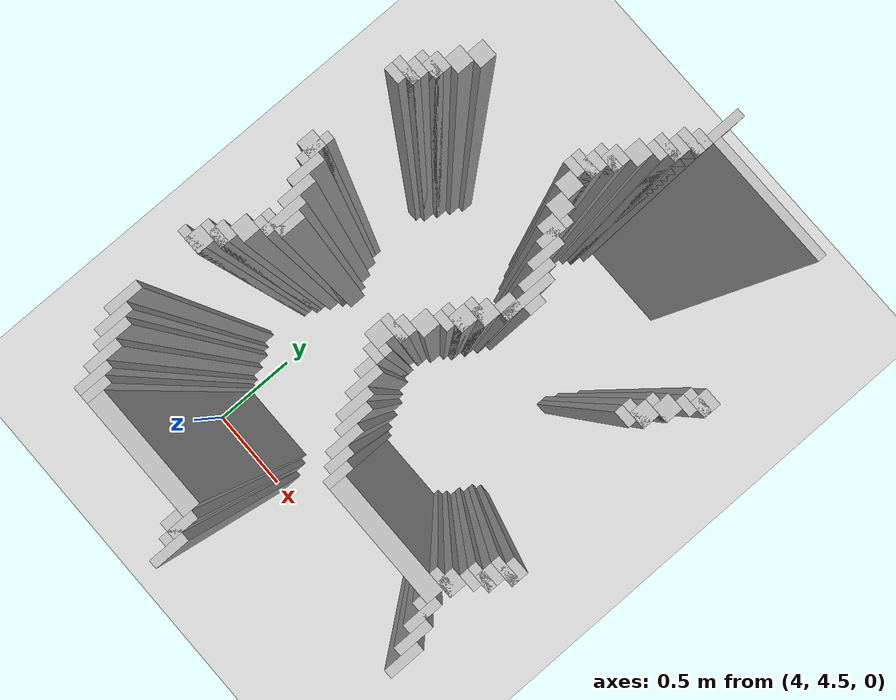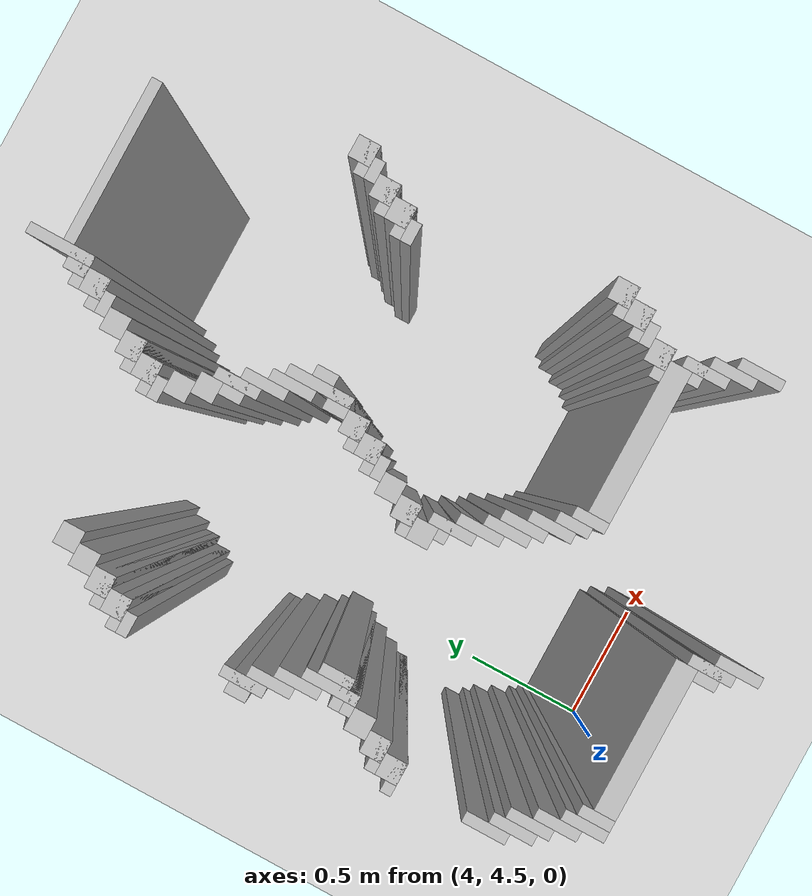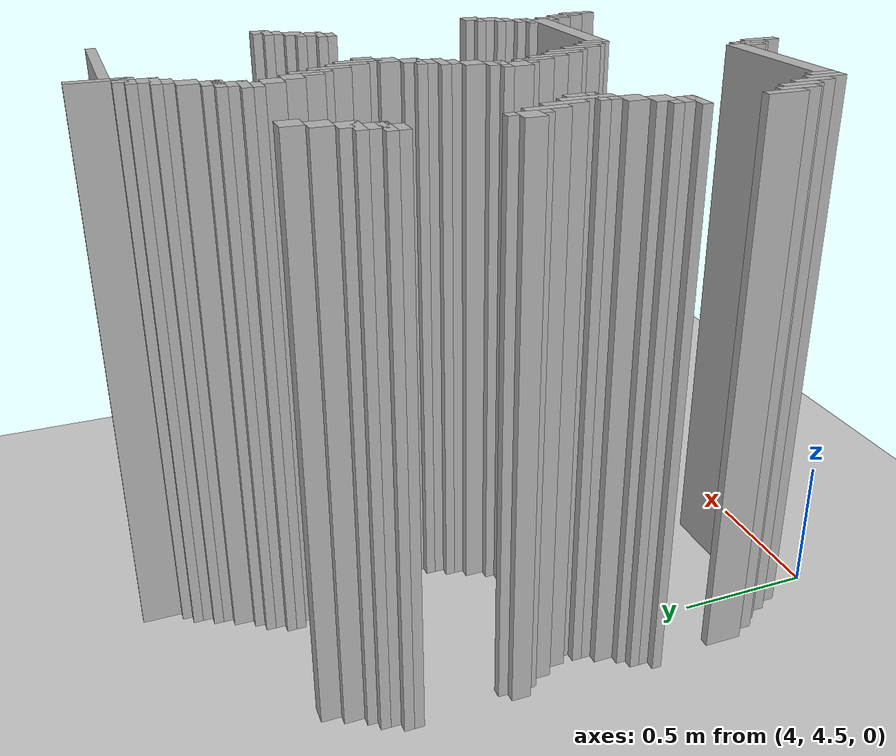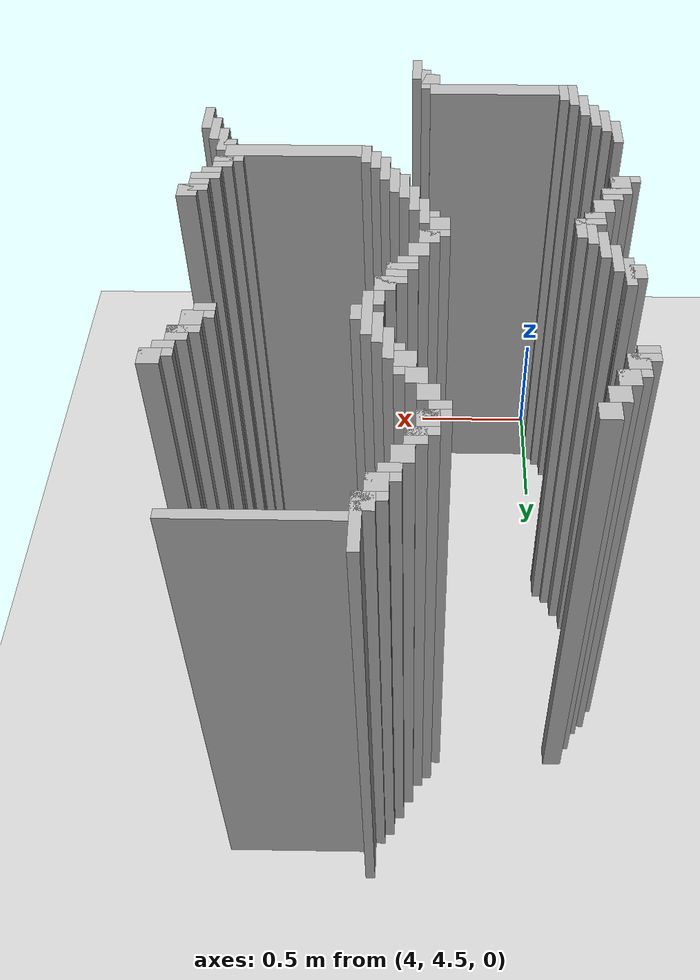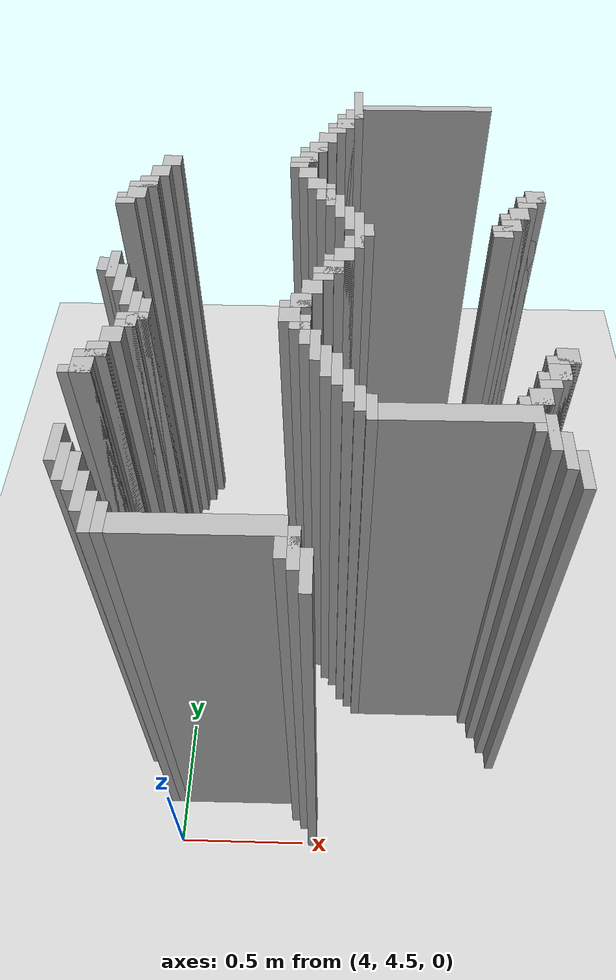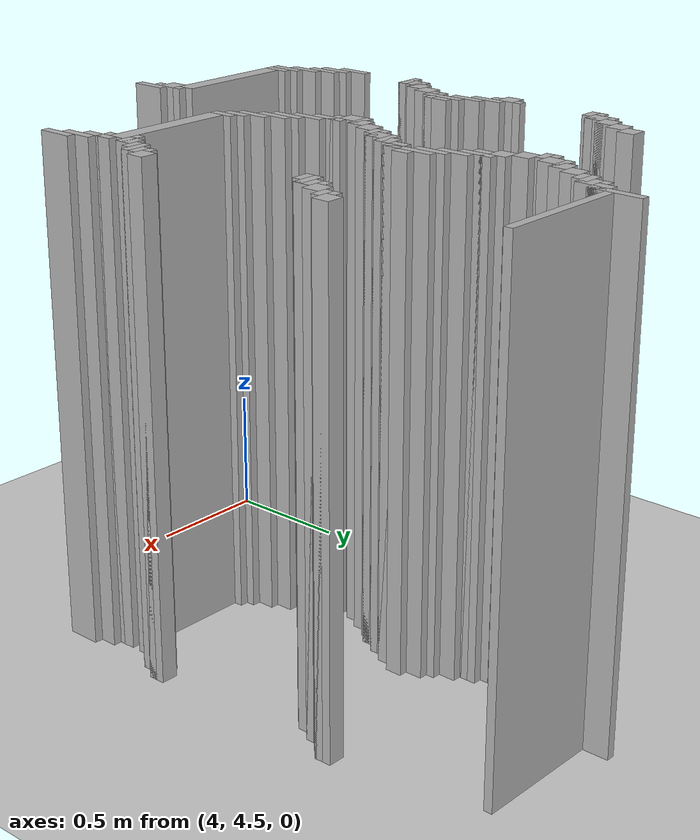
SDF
<sdf version="1.6">
 <world name="slam_world">
  <model name="ground_plane">
   <static>true</static>
   <link name="link">
    <collision name="collision">
     <geometry><plane><normal>0 0 1</normal><size>100 100</size></plane></geometry>
    </collision>
    <visual name="visual">
     <geometry><plane><normal>0 0 1</normal><size>100 100</size></plane></geometry>
     <material>
      <ambient>0.8 0.8 0.8 1</ambient>
      <diffuse>0.8 0.8 0.8 1</diffuse>
      <specular>0.8 0.8 0.8 1</specular>
     </material>
    </visual>
   </link>
  </model>
  <model name="wall_3517">
   <static>true</static>
   <pose>4.6809744779582365 6.821345707656612 1.0 0 0 0</pose>
   <link name="link">
    <collision name="collision">
     <geometry><box><size>0.03480278422273782 0.2088167053364269 2.0</size></box></geometry>
    </collision>
    <visual name="visual">
     <geometry><box><size>0.03480278422273782 0.2088167053364269 2.0</size></box></geometry>
     <material><ambient>0.5 0.5 0.5 1</ambient><diffuse>0.7 0.7 0.7 1</diffuse></material>
    </visual>
   </link>
  </model>
  <model name="wall_3549">
   <static>true</static>
   <pose>4.959396751740139 6.803944315545244 1.0 0 0 0</pose>
   <link name="link">
    <collision name="collision">
     <geometry><box><size>0.5220417633410672 0.03480278422273782 2.0</size></box></geometry>
    </collision>
    <visual name="visual">
     <geometry><box><size>0.5220417633410672 0.03480278422273782 2.0</size></box></geometry>
     <material><ambient>0.5 0.5 0.5 1</ambient><diffuse>0.7 0.7 0.7 1</diffuse></material>
    </visual>
   </link>
  </model>
  <model name="wall_3557">
   <static>true</static>
   <pose>4.663573085846868 6.751740139211137 1.0 0 0 0</pose>
   <link name="link">
    <collision name="collision">
     <geometry><box><size>0.06960556844547564 0.06960556844547564 2.0</size></box></geometry>
    </collision>
    <visual name="visual">
     <geometry><box><size>0.06960556844547564 0.06960556844547564 2.0</size></box></geometry>
     <material><ambient>0.5 0.5 0.5 1</ambient><diffuse>0.7 0.7 0.7 1</diffuse></material>
    </visual>
   </link>
  </model>
  <model name="wall_3570">
   <static>true</static>
   <pose>4.646171693735498 6.734338747099768 1.0 0 0 0</pose>
   <link name="link">
    <collision name="collision">
     <geometry><box><size>0.10440835266821345 0.03480278422273782 2.0</size></box></geometry>
    </collision>
    <visual name="visual">
     <geometry><box><size>0.10440835266821345 0.03480278422273782 2.0</size></box></geometry>
     <material><ambient>0.5 0.5 0.5 1</ambient><diffuse>0.7 0.7 0.7 1</diffuse></material>
    </visual>
   </link>
  </model>
  <model name="wall_3583">
   <static>true</static>
   <pose>4.6287703016241295 6.682134570765661 1.0 0 0 0</pose>
   <link name="link">
    <collision name="collision">
     <geometry><box><size>0.06960556844547564 0.06960556844547564 2.0</size></box></geometry>
    </collision>
    <visual name="visual">
     <geometry><box><size>0.06960556844547564 0.06960556844547564 2.0</size></box></geometry>
     <material><ambient>0.5 0.5 0.5 1</ambient><diffuse>0.7 0.7 0.7 1</diffuse></material>
    </visual>
   </link>
  </model>
  <model name="wall_3596">
   <static>true</static>
   <pose>4.611368909512761 6.664733178654292 1.0 0 0 0</pose>
   <link name="link">
    <collision name="collision">
     <geometry><box><size>0.10440835266821345 0.03480278422273782 2.0</size></box></geometry>
    </collision>
    <visual name="visual">
     <geometry><box><size>0.10440835266821345 0.03480278422273782 2.0</size></box></geometry>
     <material><ambient>0.5 0.5 0.5 1</ambient><diffuse>0.7 0.7 0.7 1</diffuse></material>
    </visual>
   </link>
  </model>
  <model name="wall_3607">
   <static>true</static>
   <pose>4.593967517401392 6.629930394431554 1.0 0 0 0</pose>
   <link name="link">
    <collision name="collision">
     <geometry><box><size>0.06960556844547564 0.03480278422273782 2.0</size></box></geometry>
    </collision>
    <visual name="visual">
     <geometry><box><size>0.06960556844547564 0.03480278422273782 2.0</size></box></geometry>
     <material><ambient>0.5 0.5 0.5 1</ambient><diffuse>0.7 0.7 0.7 1</diffuse></material>
    </visual>
   </link>
  </model>
  <model name="wall_3616">
   <static>true</static>
   <pose>4.559164733178654 6.577726218097448 1.0 0 0 0</pose>
   <link name="link">
    <collision name="collision">
     <geometry><box><size>0.06960556844547564 0.06960556844547564 2.0</size></box></geometry>
    </collision>
    <visual name="visual">
     <geometry><box><size>0.06960556844547564 0.06960556844547564 2.0</size></box></geometry>
     <material><ambient>0.5 0.5 0.5 1</ambient><diffuse>0.7 0.7 0.7 1</diffuse></material>
    </visual>
   </link>
  </model>
  <model name="wall_3629">
   <static>true</static>
   <pose>4.524361948955916 6.508120649651972 1.0 0 0 0</pose>
   <link name="link">
    <collision name="collision">
     <geometry><box><size>0.06960556844547564 0.06960556844547564 2.0</size></box></geometry>
    </collision>
    <visual name="visual">
     <geometry><box><size>0.06960556844547564 0.06960556844547564 2.0</size></box></geometry>
     <material><ambient>0.5 0.5 0.5 1</ambient><diffuse>0.7 0.7 0.7 1</diffuse></material>
    </visual>
   </link>
  </model>
  <model name="wall_3642">
   <static>true</static>
   <pose>4.506960556844548 6.490719257540603 1.0 0 0 0</pose>
   <link name="link">
    <collision name="collision">
     <geometry><box><size>0.10440835266821345 0.03480278422273782 2.0</size></box></geometry>
    </collision>
    <visual name="visual">
     <geometry><box><size>0.10440835266821345 0.03480278422273782 2.0</size></box></geometry>
     <material><ambient>0.5 0.5 0.5 1</ambient><diffuse>0.7 0.7 0.7 1</diffuse></material>
    </visual>
   </link>
  </model>
  <model name="wall_3653">
   <static>true</static>
   <pose>4.489559164733178 6.438515081206496 1.0 0 0 0</pose>
   <link name="link">
    <collision name="collision">
     <geometry><box><size>0.06960556844547564 0.06960556844547564 2.0</size></box></geometry>
    </collision>
    <visual name="visual">
     <geometry><box><size>0.06960556844547564 0.06960556844547564 2.0</size></box></geometry>
     <material><ambient>0.5 0.5 0.5 1</ambient><diffuse>0.7 0.7 0.7 1</diffuse></material>
    </visual>
   </link>
  </model>
  <model name="wall_3662">
   <static>true</static>
   <pose>3.967517401392111 6.403712296983758 1.0 0 0 0</pose>
   <link name="link">
    <collision name="collision">
     <geometry><box><size>0.06960556844547564 0.06960556844547564 2.0</size></box></geometry>
    </collision>
    <visual name="visual">
     <geometry><box><size>0.06960556844547564 0.06960556844547564 2.0</size></box></geometry>
     <material><ambient>0.5 0.5 0.5 1</ambient><diffuse>0.7 0.7 0.7 1</diffuse></material>
    </visual>
   </link>
  </model>
  <model name="wall_3663">
   <static>true</static>
   <pose>4.472157772621809 6.421113689095128 1.0 0 0 0</pose>
   <link name="link">
    <collision name="collision">
     <geometry><box><size>0.10440835266821345 0.03480278422273782 2.0</size></box></geometry>
    </collision>
    <visual name="visual">
     <geometry><box><size>0.10440835266821345 0.03480278422273782 2.0</size></box></geometry>
     <material><ambient>0.5 0.5 0.5 1</ambient><diffuse>0.7 0.7 0.7 1</diffuse></material>
    </visual>
   </link>
  </model>
  <model name="wall_3673">
   <static>true</static>
   <pose>4.454756380510441 6.386310904872389 1.0 0 0 0</pose>
   <link name="link">
    <collision name="collision">
     <geometry><box><size>0.06960556844547564 0.03480278422273782 2.0</size></box></geometry>
    </collision>
    <visual name="visual">
     <geometry><box><size>0.06960556844547564 0.03480278422273782 2.0</size></box></geometry>
     <material><ambient>0.5 0.5 0.5 1</ambient><diffuse>0.7 0.7 0.7 1</diffuse></material>
    </visual>
   </link>
  </model>
  <model name="wall_3680">
   <static>true</static>
   <pose>3.932714617169373 6.334106728538282 1.0 0 0 0</pose>
   <link name="link">
    <collision name="collision">
     <geometry><box><size>0.06960556844547564 0.06960556844547564 2.0</size></box></geometry>
    </collision>
    <visual name="visual">
     <geometry><box><size>0.06960556844547564 0.06960556844547564 2.0</size></box></geometry>
     <material><ambient>0.5 0.5 0.5 1</ambient><diffuse>0.7 0.7 0.7 1</diffuse></material>
    </visual>
   </link>
  </model>
  <model name="wall_3681">
   <static>true</static>
   <pose>4.489559164733178 6.334106728538282 1.0 0 0 0</pose>
   <link name="link">
    <collision name="collision">
     <geometry><box><size>0.06960556844547564 0.06960556844547564 2.0</size></box></geometry>
    </collision>
    <visual name="visual">
     <geometry><box><size>0.06960556844547564 0.06960556844547564 2.0</size></box></geometry>
     <material><ambient>0.5 0.5 0.5 1</ambient><diffuse>0.7 0.7 0.7 1</diffuse></material>
    </visual>
   </link>
  </model>
  <model name="wall_3703">
   <static>true</static>
   <pose>3.897911832946636 6.2645011600928076 1.0 0 0 0</pose>
   <link name="link">
    <collision name="collision">
     <geometry><box><size>0.06960556844547564 0.06960556844547564 2.0</size></box></geometry>
    </collision>
    <visual name="visual">
     <geometry><box><size>0.06960556844547564 0.06960556844547564 2.0</size></box></geometry>
     <material><ambient>0.5 0.5 0.5 1</ambient><diffuse>0.7 0.7 0.7 1</diffuse></material>
    </visual>
   </link>
  </model>
  <model name="wall_3704">
   <static>true</static>
   <pose>4.524361948955916 6.2645011600928076 1.0 0 0 0</pose>
   <link name="link">
    <collision name="collision">
     <geometry><box><size>0.06960556844547564 0.06960556844547564 2.0</size></box></geometry>
    </collision>
    <visual name="visual">
     <geometry><box><size>0.06960556844547564 0.06960556844547564 2.0</size></box></geometry>
     <material><ambient>0.5 0.5 0.5 1</ambient><diffuse>0.7 0.7 0.7 1</diffuse></material>
    </visual>
   </link>
  </model>
  <model name="wall_3716">
   <static>true</static>
   <pose>3.8805104408352666 6.247099767981438 1.0 0 0 0</pose>
   <link name="link">
    <collision name="collision">
     <geometry><box><size>0.10440835266821345 0.03480278422273782 2.0</size></box></geometry>
    </collision>
    <visual name="visual">
     <geometry><box><size>0.10440835266821345 0.03480278422273782 2.0</size></box></geometry>
     <material><ambient>0.5 0.5 0.5 1</ambient><diffuse>0.7 0.7 0.7 1</diffuse></material>
    </visual>
   </link>
  </model>
  <model name="wall_3717">
   <static>true</static>
   <pose>4.576566125290023 6.194895591647332 1.0 0 0 0</pose>
   <link name="link">
    <collision name="collision">
     <geometry><box><size>0.03480278422273782 0.13921113689095127 2.0</size></box></geometry>
    </collision>
    <visual name="visual">
     <geometry><box><size>0.03480278422273782 0.13921113689095127 2.0</size></box></geometry>
     <material><ambient>0.5 0.5 0.5 1</ambient><diffuse>0.7 0.7 0.7 1</diffuse></material>
    </visual>
   </link>
  </model>
  <model name="wall_3729">
   <static>true</static>
   <pose>3.863109048723898 6.194895591647332 1.0 0 0 0</pose>
   <link name="link">
    <collision name="collision">
     <geometry><box><size>0.06960556844547564 0.06960556844547564 2.0</size></box></geometry>
    </collision>
    <visual name="visual">
     <geometry><box><size>0.06960556844547564 0.06960556844547564 2.0</size></box></geometry>
     <material><ambient>0.5 0.5 0.5 1</ambient><diffuse>0.7 0.7 0.7 1</diffuse></material>
    </visual>
   </link>
  </model>
  <model name="wall_3730">
   <static>true</static>
   <pose>4.559164733178654 6.194895591647332 1.0 0 0 0</pose>
   <link name="link">
    <collision name="collision">
     <geometry><box><size>0.06960556844547564 0.06960556844547564 2.0</size></box></geometry>
    </collision>
    <visual name="visual">
     <geometry><box><size>0.06960556844547564 0.06960556844547564 2.0</size></box></geometry>
     <material><ambient>0.5 0.5 0.5 1</ambient><diffuse>0.7 0.7 0.7 1</diffuse></material>
    </visual>
   </link>
  </model>
  <model name="wall_3731">
   <static>true</static>
   <pose>5.324825986078886 6.194895591647332 1.0 0 0 0</pose>
   <link name="link">
    <collision name="collision">
     <geometry><box><size>0.06960556844547564 0.06960556844547564 2.0</size></box></geometry>
    </collision>
    <visual name="visual">
     <geometry><box><size>0.06960556844547564 0.06960556844547564 2.0</size></box></geometry>
     <material><ambient>0.5 0.5 0.5 1</ambient><diffuse>0.7 0.7 0.7 1</diffuse></material>
    </visual>
   </link>
  </model>
  <model name="wall_3742">
   <static>true</static>
   <pose>3.845707656612529 6.177494199535962 1.0 0 0 0</pose>
   <link name="link">
    <collision name="collision">
     <geometry><box><size>0.10440835266821345 0.03480278422273782 2.0</size></box></geometry>
    </collision>
    <visual name="visual">
     <geometry><box><size>0.10440835266821345 0.03480278422273782 2.0</size></box></geometry>
     <material><ambient>0.5 0.5 0.5 1</ambient><diffuse>0.7 0.7 0.7 1</diffuse></material>
    </visual>
   </link>
  </model>
  <model name="wall_3743">
   <static>true</static>
   <pose>4.611368909512761 6.125290023201856 1.0 0 0 0</pose>
   <link name="link">
    <collision name="collision">
     <geometry><box><size>0.03480278422273782 0.13921113689095127 2.0</size></box></geometry>
    </collision>
    <visual name="visual">
     <geometry><box><size>0.03480278422273782 0.13921113689095127 2.0</size></box></geometry>
     <material><ambient>0.5 0.5 0.5 1</ambient><diffuse>0.7 0.7 0.7 1</diffuse></material>
    </visual>
   </link>
  </model>
  <model name="wall_3744">
   <static>true</static>
   <pose>5.307424593967517 6.177494199535962 1.0 0 0 0</pose>
   <link name="link">
    <collision name="collision">
     <geometry><box><size>0.10440835266821345 0.03480278422273782 2.0</size></box></geometry>
    </collision>
    <visual name="visual">
     <geometry><box><size>0.10440835266821345 0.03480278422273782 2.0</size></box></geometry>
     <material><ambient>0.5 0.5 0.5 1</ambient><diffuse>0.7 0.7 0.7 1</diffuse></material>
    </visual>
   </link>
  </model>
  <model name="wall_3753">
   <static>true</static>
   <pose>3.82830626450116 6.142691415313225 1.0 0 0 0</pose>
   <link name="link">
    <collision name="collision">
     <geometry><box><size>0.06960556844547564 0.03480278422273782 2.0</size></box></geometry>
    </collision>
    <visual name="visual">
     <geometry><box><size>0.06960556844547564 0.03480278422273782 2.0</size></box></geometry>
     <material><ambient>0.5 0.5 0.5 1</ambient><diffuse>0.7 0.7 0.7 1</diffuse></material>
    </visual>
   </link>
  </model>
  <model name="wall_3754">
   <static>true</static>
   <pose>5.290023201856148 6.142691415313225 1.0 0 0 0</pose>
   <link name="link">
    <collision name="collision">
     <geometry><box><size>0.06960556844547564 0.03480278422273782 2.0</size></box></geometry>
    </collision>
    <visual name="visual">
     <geometry><box><size>0.06960556844547564 0.03480278422273782 2.0</size></box></geometry>
     <material><ambient>0.5 0.5 0.5 1</ambient><diffuse>0.7 0.7 0.7 1</diffuse></material>
    </visual>
   </link>
  </model>
  <model name="wall_3760">
   <static>true</static>
   <pose>4.646171693735498 6.05568445475638 1.0 0 0 0</pose>
   <link name="link">
    <collision name="collision">
     <geometry><box><size>0.03480278422273782 0.13921113689095127 2.0</size></box></geometry>
    </collision>
    <visual name="visual">
     <geometry><box><size>0.03480278422273782 0.13921113689095127 2.0</size></box></geometry>
     <material><ambient>0.5 0.5 0.5 1</ambient><diffuse>0.7 0.7 0.7 1</diffuse></material>
    </visual>
   </link>
  </model>
  <model name="wall_3761">
   <static>true</static>
   <pose>5.25522041763341 6.090487238979118 1.0 0 0 0</pose>
   <link name="link">
    <collision name="collision">
     <geometry><box><size>0.06960556844547564 0.06960556844547564 2.0</size></box></geometry>
    </collision>
    <visual name="visual">
     <geometry><box><size>0.06960556844547564 0.06960556844547564 2.0</size></box></geometry>
     <material><ambient>0.5 0.5 0.5 1</ambient><diffuse>0.7 0.7 0.7 1</diffuse></material>
    </visual>
   </link>
  </model>
  <model name="wall_3773">
   <static>true</static>
   <pose>4.6809744779582365 5.986078886310905 1.0 0 0 0</pose>
   <link name="link">
    <collision name="collision">
     <geometry><box><size>0.03480278422273782 0.2088167053364269 2.0</size></box></geometry>
    </collision>
    <visual name="visual">
     <geometry><box><size>0.03480278422273782 0.2088167053364269 2.0</size></box></geometry>
     <material><ambient>0.5 0.5 0.5 1</ambient><diffuse>0.7 0.7 0.7 1</diffuse></material>
    </visual>
   </link>
  </model>
  <model name="wall_3774">
   <static>true</static>
   <pose>5.237819025522041 6.073085846867749 1.0 0 0 0</pose>
   <link name="link">
    <collision name="collision">
     <geometry><box><size>0.10440835266821345 0.03480278422273782 2.0</size></box></geometry>
    </collision>
    <visual name="visual">
     <geometry><box><size>0.10440835266821345 0.03480278422273782 2.0</size></box></geometry>
     <material><ambient>0.5 0.5 0.5 1</ambient><diffuse>0.7 0.7 0.7 1</diffuse></material>
    </visual>
   </link>
  </model>
  <model name="wall_3784">
   <static>true</static>
   <pose>5.220417633410673 6.020881670533642 1.0 0 0 0</pose>
   <link name="link">
    <collision name="collision">
     <geometry><box><size>0.06960556844547564 0.06960556844547564 2.0</size></box></geometry>
    </collision>
    <visual name="visual">
     <geometry><box><size>0.06960556844547564 0.06960556844547564 2.0</size></box></geometry>
     <material><ambient>0.5 0.5 0.5 1</ambient><diffuse>0.7 0.7 0.7 1</diffuse></material>
    </visual>
   </link>
  </model>
  <model name="wall_3790">
   <static>true</static>
   <pose>4.715777262180974 5.986078886310905 1.0 0 0 0</pose>
   <link name="link">
    <collision name="collision">
     <geometry><box><size>0.03480278422273782 0.06960556844547564 2.0</size></box></geometry>
    </collision>
    <visual name="visual">
     <geometry><box><size>0.03480278422273782 0.06960556844547564 2.0</size></box></geometry>
     <material><ambient>0.5 0.5 0.5 1</ambient><diffuse>0.7 0.7 0.7 1</diffuse></material>
    </visual>
   </link>
  </model>
  <model name="wall_3791">
   <static>true</static>
   <pose>5.203016241299304 6.003480278422273 1.0 0 0 0</pose>
   <link name="link">
    <collision name="collision">
     <geometry><box><size>0.10440835266821345 0.03480278422273782 2.0</size></box></geometry>
    </collision>
    <visual name="visual">
     <geometry><box><size>0.10440835266821345 0.03480278422273782 2.0</size></box></geometry>
     <material><ambient>0.5 0.5 0.5 1</ambient><diffuse>0.7 0.7 0.7 1</diffuse></material>
    </visual>
   </link>
  </model>
  <model name="wall_3802">
   <static>true</static>
   <pose>5.185614849187935 5.968677494199536 1.0 0 0 0</pose>
   <link name="link">
    <collision name="collision">
     <geometry><box><size>0.06960556844547564 0.03480278422273782 2.0</size></box></geometry>
    </collision>
    <visual name="visual">
     <geometry><box><size>0.06960556844547564 0.03480278422273782 2.0</size></box></geometry>
     <material><ambient>0.5 0.5 0.5 1</ambient><diffuse>0.7 0.7 0.7 1</diffuse></material>
    </visual>
   </link>
  </model>
  <model name="wall_3814">
   <static>true</static>
   <pose>4.663573085846868 5.916473317865429 1.0 0 0 0</pose>
   <link name="link">
    <collision name="collision">
     <geometry><box><size>0.06960556844547564 0.06960556844547564 2.0</size></box></geometry>
    </collision>
    <visual name="visual">
     <geometry><box><size>0.06960556844547564 0.06960556844547564 2.0</size></box></geometry>
     <material><ambient>0.5 0.5 0.5 1</ambient><diffuse>0.7 0.7 0.7 1</diffuse></material>
    </visual>
   </link>
  </model>
  <model name="wall_3843">
   <static>true</static>
   <pose>4.6287703016241295 5.846867749419953 1.0 0 0 0</pose>
   <link name="link">
    <collision name="collision">
     <geometry><box><size>0.06960556844547564 0.06960556844547564 2.0</size></box></geometry>
    </collision>
    <visual name="visual">
     <geometry><box><size>0.06960556844547564 0.06960556844547564 2.0</size></box></geometry>
     <material><ambient>0.5 0.5 0.5 1</ambient><diffuse>0.7 0.7 0.7 1</diffuse></material>
    </visual>
   </link>
  </model>
  <model name="wall_3858">
   <static>true</static>
   <pose>3.845707656612529 5.7772621809744775 1.0 0 0 0</pose>
   <link name="link">
    <collision name="collision">
     <geometry><box><size>0.03480278422273782 0.13921113689095127 2.0</size></box></geometry>
    </collision>
    <visual name="visual">
     <geometry><box><size>0.03480278422273782 0.13921113689095127 2.0</size></box></geometry>
     <material><ambient>0.5 0.5 0.5 1</ambient><diffuse>0.7 0.7 0.7 1</diffuse></material>
    </visual>
   </link>
  </model>
  <model name="wall_3859">
   <static>true</static>
   <pose>4.611368909512761 5.8294663573085845 1.0 0 0 0</pose>
   <link name="link">
    <collision name="collision">
     <geometry><box><size>0.10440835266821345 0.03480278422273782 2.0</size></box></geometry>
    </collision>
    <visual name="visual">
     <geometry><box><size>0.10440835266821345 0.03480278422273782 2.0</size></box></geometry>
     <material><ambient>0.5 0.5 0.5 1</ambient><diffuse>0.7 0.7 0.7 1</diffuse></material>
    </visual>
   </link>
  </model>
  <model name="wall_3874">
   <static>true</static>
   <pose>3.82830626450116 5.7772621809744775 1.0 0 0 0</pose>
   <link name="link">
    <collision name="collision">
     <geometry><box><size>0.06960556844547564 0.06960556844547564 2.0</size></box></geometry>
    </collision>
    <visual name="visual">
     <geometry><box><size>0.06960556844547564 0.06960556844547564 2.0</size></box></geometry>
     <material><ambient>0.5 0.5 0.5 1</ambient><diffuse>0.7 0.7 0.7 1</diffuse></material>
    </visual>
   </link>
  </model>
  <model name="wall_3875">
   <static>true</static>
   <pose>4.593967517401392 5.7772621809744775 1.0 0 0 0</pose>
   <link name="link">
    <collision name="collision">
     <geometry><box><size>0.06960556844547564 0.06960556844547564 2.0</size></box></geometry>
    </collision>
    <visual name="visual">
     <geometry><box><size>0.06960556844547564 0.06960556844547564 2.0</size></box></geometry>
     <material><ambient>0.5 0.5 0.5 1</ambient><diffuse>0.7 0.7 0.7 1</diffuse></material>
    </visual>
   </link>
  </model>
  <model name="wall_3887">
   <static>true</static>
   <pose>3.8805104408352666 5.707656612529002 1.0 0 0 0</pose>
   <link name="link">
    <collision name="collision">
     <geometry><box><size>0.03480278422273782 0.13921113689095127 2.0</size></box></geometry>
    </collision>
    <visual name="visual">
     <geometry><box><size>0.03480278422273782 0.13921113689095127 2.0</size></box></geometry>
     <material><ambient>0.5 0.5 0.5 1</ambient><diffuse>0.7 0.7 0.7 1</diffuse></material>
    </visual>
   </link>
  </model>
  <model name="wall_3888">
   <static>true</static>
   <pose>4.576566125290023 5.759860788863109 1.0 0 0 0</pose>
   <link name="link">
    <collision name="collision">
     <geometry><box><size>0.10440835266821345 0.03480278422273782 2.0</size></box></geometry>
    </collision>
    <visual name="visual">
     <geometry><box><size>0.10440835266821345 0.03480278422273782 2.0</size></box></geometry>
     <material><ambient>0.5 0.5 0.5 1</ambient><diffuse>0.7 0.7 0.7 1</diffuse></material>
    </visual>
   </link>
  </model>
  <model name="wall_3901">
   <static>true</static>
   <pose>4.559164733178654 5.725058004640371 1.0 0 0 0</pose>
   <link name="link">
    <collision name="collision">
     <geometry><box><size>0.06960556844547564 0.03480278422273782 2.0</size></box></geometry>
    </collision>
    <visual name="visual">
     <geometry><box><size>0.06960556844547564 0.03480278422273782 2.0</size></box></geometry>
     <material><ambient>0.5 0.5 0.5 1</ambient><diffuse>0.7 0.7 0.7 1</diffuse></material>
    </visual>
   </link>
  </model>
  <model name="wall_3911">
   <static>true</static>
   <pose>3.9153132250580045 5.638051044083526 1.0 0 0 0</pose>
   <link name="link">
    <collision name="collision">
     <geometry><box><size>0.03480278422273782 0.13921113689095127 2.0</size></box></geometry>
    </collision>
    <visual name="visual">
     <geometry><box><size>0.03480278422273782 0.13921113689095127 2.0</size></box></geometry>
     <material><ambient>0.5 0.5 0.5 1</ambient><diffuse>0.7 0.7 0.7 1</diffuse></material>
    </visual>
   </link>
  </model>
  <model name="wall_3912">
   <static>true</static>
   <pose>4.524361948955916 5.672853828306264 1.0 0 0 0</pose>
   <link name="link">
    <collision name="collision">
     <geometry><box><size>0.06960556844547564 0.06960556844547564 2.0</size></box></geometry>
    </collision>
    <visual name="visual">
     <geometry><box><size>0.06960556844547564 0.06960556844547564 2.0</size></box></geometry>
     <material><ambient>0.5 0.5 0.5 1</ambient><diffuse>0.7 0.7 0.7 1</diffuse></material>
    </visual>
   </link>
  </model>
  <model name="wall_3927">
   <static>true</static>
   <pose>3.9501160092807424 5.551044083526682 1.0 0 0 0</pose>
   <link name="link">
    <collision name="collision">
     <geometry><box><size>0.03480278422273782 0.17401392111368907 2.0</size></box></geometry>
    </collision>
    <visual name="visual">
     <geometry><box><size>0.03480278422273782 0.17401392111368907 2.0</size></box></geometry>
     <material><ambient>0.5 0.5 0.5 1</ambient><diffuse>0.7 0.7 0.7 1</diffuse></material>
    </visual>
   </link>
  </model>
  <model name="wall_3928">
   <static>true</static>
   <pose>4.489559164733178 5.603248259860789 1.0 0 0 0</pose>
   <link name="link">
    <collision name="collision">
     <geometry><box><size>0.06960556844547564 0.06960556844547564 2.0</size></box></geometry>
    </collision>
    <visual name="visual">
     <geometry><box><size>0.06960556844547564 0.06960556844547564 2.0</size></box></geometry>
     <material><ambient>0.5 0.5 0.5 1</ambient><diffuse>0.7 0.7 0.7 1</diffuse></material>
    </visual>
   </link>
  </model>
  <model name="wall_3943">
   <static>true</static>
   <pose>3.98491879350348 5.551044083526682 1.0 0 0 0</pose>
   <link name="link">
    <collision name="collision">
     <geometry><box><size>0.03480278422273782 0.10440835266821345 2.0</size></box></geometry>
    </collision>
    <visual name="visual">
     <geometry><box><size>0.03480278422273782 0.10440835266821345 2.0</size></box></geometry>
     <material><ambient>0.5 0.5 0.5 1</ambient><diffuse>0.7 0.7 0.7 1</diffuse></material>
    </visual>
   </link>
  </model>
  <model name="wall_3944">
   <static>true</static>
   <pose>4.472157772621809 5.58584686774942 1.0 0 0 0</pose>
   <link name="link">
    <collision name="collision">
     <geometry><box><size>0.10440835266821345 0.03480278422273782 2.0</size></box></geometry>
    </collision>
    <visual name="visual">
     <geometry><box><size>0.10440835266821345 0.03480278422273782 2.0</size></box></geometry>
     <material><ambient>0.5 0.5 0.5 1</ambient><diffuse>0.7 0.7 0.7 1</diffuse></material>
    </visual>
   </link>
  </model>
  <model name="wall_3958">
   <static>true</static>
   <pose>4.454756380510441 5.533642691415313 1.0 0 0 0</pose>
   <link name="link">
    <collision name="collision">
     <geometry><box><size>0.06960556844547564 0.06960556844547564 2.0</size></box></geometry>
    </collision>
    <visual name="visual">
     <geometry><box><size>0.06960556844547564 0.06960556844547564 2.0</size></box></geometry>
     <material><ambient>0.5 0.5 0.5 1</ambient><diffuse>0.7 0.7 0.7 1</diffuse></material>
    </visual>
   </link>
  </model>
  <model name="wall_3971">
   <static>true</static>
   <pose>3.9501160092807424 5.516241299303944 1.0 0 0 0</pose>
   <link name="link">
    <collision name="collision">
     <geometry><box><size>0.10440835266821345 0.03480278422273782 2.0</size></box></geometry>
    </collision>
    <visual name="visual">
     <geometry><box><size>0.10440835266821345 0.03480278422273782 2.0</size></box></geometry>
     <material><ambient>0.5 0.5 0.5 1</ambient><diffuse>0.7 0.7 0.7 1</diffuse></material>
    </visual>
   </link>
  </model>
  <model name="wall_3972">
   <static>true</static>
   <pose>4.506960556844548 5.464037122969837 1.0 0 0 0</pose>
   <link name="link">
    <collision name="collision">
     <geometry><box><size>0.03480278422273782 0.13921113689095127 2.0</size></box></geometry>
    </collision>
    <visual name="visual">
     <geometry><box><size>0.03480278422273782 0.13921113689095127 2.0</size></box></geometry>
     <material><ambient>0.5 0.5 0.5 1</ambient><diffuse>0.7 0.7 0.7 1</diffuse></material>
    </visual>
   </link>
  </model>
  <model name="wall_3987">
   <static>true</static>
   <pose>3.932714617169373 5.481438515081206 1.0 0 0 0</pose>
   <link name="link">
    <collision name="collision">
     <geometry><box><size>0.06960556844547564 0.03480278422273782 2.0</size></box></geometry>
    </collision>
    <visual name="visual">
     <geometry><box><size>0.06960556844547564 0.03480278422273782 2.0</size></box></geometry>
     <material><ambient>0.5 0.5 0.5 1</ambient><diffuse>0.7 0.7 0.7 1</diffuse></material>
    </visual>
   </link>
  </model>
  <model name="wall_3988">
   <static>true</static>
   <pose>4.489559164733178 5.481438515081206 1.0 0 0 0</pose>
   <link name="link">
    <collision name="collision">
     <geometry><box><size>0.06960556844547564 0.03480278422273782 2.0</size></box></geometry>
    </collision>
    <visual name="visual">
     <geometry><box><size>0.06960556844547564 0.03480278422273782 2.0</size></box></geometry>
     <material><ambient>0.5 0.5 0.5 1</ambient><diffuse>0.7 0.7 0.7 1</diffuse></material>
    </visual>
   </link>
  </model>
  <model name="wall_4000">
   <static>true</static>
   <pose>3.897911832946636 5.4292343387471 1.0 0 0 0</pose>
   <link name="link">
    <collision name="collision">
     <geometry><box><size>0.06960556844547564 0.06960556844547564 2.0</size></box></geometry>
    </collision>
    <visual name="visual">
     <geometry><box><size>0.06960556844547564 0.06960556844547564 2.0</size></box></geometry>
     <material><ambient>0.5 0.5 0.5 1</ambient><diffuse>0.7 0.7 0.7 1</diffuse></material>
    </visual>
   </link>
  </model>
  <model name="wall_4001">
   <static>true</static>
   <pose>4.541763341067285 5.3944315545243615 1.0 0 0 0</pose>
   <link name="link">
    <collision name="collision">
     <geometry><box><size>0.03480278422273782 0.13921113689095127 2.0</size></box></geometry>
    </collision>
    <visual name="visual">
     <geometry><box><size>0.03480278422273782 0.13921113689095127 2.0</size></box></geometry>
     <material><ambient>0.5 0.5 0.5 1</ambient><diffuse>0.7 0.7 0.7 1</diffuse></material>
    </visual>
   </link>
  </model>
  <model name="wall_4013">
   <static>true</static>
   <pose>3.863109048723898 5.359628770301624 1.0 0 0 0</pose>
   <link name="link">
    <collision name="collision">
     <geometry><box><size>0.06960556844547564 0.06960556844547564 2.0</size></box></geometry>
    </collision>
    <visual name="visual">
     <geometry><box><size>0.06960556844547564 0.06960556844547564 2.0</size></box></geometry>
     <material><ambient>0.5 0.5 0.5 1</ambient><diffuse>0.7 0.7 0.7 1</diffuse></material>
    </visual>
   </link>
  </model>
  <model name="wall_4014">
   <static>true</static>
   <pose>4.576566125290023 5.324825986078886 1.0 0 0 0</pose>
   <link name="link">
    <collision name="collision">
     <geometry><box><size>0.03480278422273782 0.13921113689095127 2.0</size></box></geometry>
    </collision>
    <visual name="visual">
     <geometry><box><size>0.03480278422273782 0.13921113689095127 2.0</size></box></geometry>
     <material><ambient>0.5 0.5 0.5 1</ambient><diffuse>0.7 0.7 0.7 1</diffuse></material>
    </visual>
   </link>
  </model>
  <model name="wall_4015">
   <static>true</static>
   <pose>5.324825986078886 5.359628770301624 1.0 0 0 0</pose>
   <link name="link">
    <collision name="collision">
     <geometry><box><size>0.06960556844547564 0.06960556844547564 2.0</size></box></geometry>
    </collision>
    <visual name="visual">
     <geometry><box><size>0.06960556844547564 0.06960556844547564 2.0</size></box></geometry>
     <material><ambient>0.5 0.5 0.5 1</ambient><diffuse>0.7 0.7 0.7 1</diffuse></material>
    </visual>
   </link>
  </model>
  <model name="wall_4026">
   <static>true</static>
   <pose>3.845707656612529 5.342227378190255 1.0 0 0 0</pose>
   <link name="link">
    <collision name="collision">
     <geometry><box><size>0.10440835266821345 0.03480278422273782 2.0</size></box></geometry>
    </collision>
    <visual name="visual">
     <geometry><box><size>0.10440835266821345 0.03480278422273782 2.0</size></box></geometry>
     <material><ambient>0.5 0.5 0.5 1</ambient><diffuse>0.7 0.7 0.7 1</diffuse></material>
    </visual>
   </link>
  </model>
  <model name="wall_4027">
   <static>true</static>
   <pose>4.611368909512761 5.290023201856148 1.0 0 0 0</pose>
   <link name="link">
    <collision name="collision">
     <geometry><box><size>0.03480278422273782 0.13921113689095127 2.0</size></box></geometry>
    </collision>
    <visual name="visual">
     <geometry><box><size>0.03480278422273782 0.13921113689095127 2.0</size></box></geometry>
     <material><ambient>0.5 0.5 0.5 1</ambient><diffuse>0.7 0.7 0.7 1</diffuse></material>
    </visual>
   </link>
  </model>
  <model name="wall_4028">
   <static>true</static>
   <pose>5.307424593967517 5.342227378190255 1.0 0 0 0</pose>
   <link name="link">
    <collision name="collision">
     <geometry><box><size>0.10440835266821345 0.03480278422273782 2.0</size></box></geometry>
    </collision>
    <visual name="visual">
     <geometry><box><size>0.10440835266821345 0.03480278422273782 2.0</size></box></geometry>
     <material><ambient>0.5 0.5 0.5 1</ambient><diffuse>0.7 0.7 0.7 1</diffuse></material>
    </visual>
   </link>
  </model>
  <model name="wall_4037">
   <static>true</static>
   <pose>3.82830626450116 5.290023201856148 1.0 0 0 0</pose>
   <link name="link">
    <collision name="collision">
     <geometry><box><size>0.06960556844547564 0.06960556844547564 2.0</size></box></geometry>
    </collision>
    <visual name="visual">
     <geometry><box><size>0.06960556844547564 0.06960556844547564 2.0</size></box></geometry>
     <material><ambient>0.5 0.5 0.5 1</ambient><diffuse>0.7 0.7 0.7 1</diffuse></material>
    </visual>
   </link>
  </model>
  <model name="wall_4038">
   <static>true</static>
   <pose>5.290023201856148 5.290023201856148 1.0 0 0 0</pose>
   <link name="link">
    <collision name="collision">
     <geometry><box><size>0.06960556844547564 0.06960556844547564 2.0</size></box></geometry>
    </collision>
    <visual name="visual">
     <geometry><box><size>0.06960556844547564 0.06960556844547564 2.0</size></box></geometry>
     <material><ambient>0.5 0.5 0.5 1</ambient><diffuse>0.7 0.7 0.7 1</diffuse></material>
    </visual>
   </link>
  </model>
  <model name="wall_4046">
   <static>true</static>
   <pose>3.810904872389791 5.27262180974478 1.0 0 0 0</pose>
   <link name="link">
    <collision name="collision">
     <geometry><box><size>0.10440835266821345 0.03480278422273782 2.0</size></box></geometry>
    </collision>
    <visual name="visual">
     <geometry><box><size>0.10440835266821345 0.03480278422273782 2.0</size></box></geometry>
     <material><ambient>0.5 0.5 0.5 1</ambient><diffuse>0.7 0.7 0.7 1</diffuse></material>
    </visual>
   </link>
  </model>
  <model name="wall_4047">
   <static>true</static>
   <pose>4.646171693735498 5.220417633410673 1.0 0 0 0</pose>
   <link name="link">
    <collision name="collision">
     <geometry><box><size>0.03480278422273782 0.13921113689095127 2.0</size></box></geometry>
    </collision>
    <visual name="visual">
     <geometry><box><size>0.03480278422273782 0.13921113689095127 2.0</size></box></geometry>
     <material><ambient>0.5 0.5 0.5 1</ambient><diffuse>0.7 0.7 0.7 1</diffuse></material>
    </visual>
   </link>
  </model>
  <model name="wall_4048">
   <static>true</static>
   <pose>5.27262180974478 5.27262180974478 1.0 0 0 0</pose>
   <link name="link">
    <collision name="collision">
     <geometry><box><size>0.10440835266821345 0.03480278422273782 2.0</size></box></geometry>
    </collision>
    <visual name="visual">
     <geometry><box><size>0.10440835266821345 0.03480278422273782 2.0</size></box></geometry>
     <material><ambient>0.5 0.5 0.5 1</ambient><diffuse>0.7 0.7 0.7 1</diffuse></material>
    </visual>
   </link>
  </model>
  <model name="wall_4058">
   <static>true</static>
   <pose>5.25522041763341 5.237819025522041 1.0 0 0 0</pose>
   <link name="link">
    <collision name="collision">
     <geometry><box><size>0.06960556844547564 0.03480278422273782 2.0</size></box></geometry>
    </collision>
    <visual name="visual">
     <geometry><box><size>0.06960556844547564 0.03480278422273782 2.0</size></box></geometry>
     <material><ambient>0.5 0.5 0.5 1</ambient><diffuse>0.7 0.7 0.7 1</diffuse></material>
    </visual>
   </link>
  </model>
  <model name="wall_4066">
   <static>true</static>
   <pose>4.6809744779582365 5.168213457076566 1.0 0 0 0</pose>
   <link name="link">
    <collision name="collision">
     <geometry><box><size>0.03480278422273782 0.10440835266821345 2.0</size></box></geometry>
    </collision>
    <visual name="visual">
     <geometry><box><size>0.03480278422273782 0.10440835266821345 2.0</size></box></geometry>
     <material><ambient>0.5 0.5 0.5 1</ambient><diffuse>0.7 0.7 0.7 1</diffuse></material>
    </visual>
   </link>
  </model>
  <model name="wall_4067">
   <static>true</static>
   <pose>5.220417633410673 5.185614849187935 1.0 0 0 0</pose>
   <link name="link">
    <collision name="collision">
     <geometry><box><size>0.06960556844547564 0.06960556844547564 2.0</size></box></geometry>
    </collision>
    <visual name="visual">
     <geometry><box><size>0.06960556844547564 0.06960556844547564 2.0</size></box></geometry>
     <material><ambient>0.5 0.5 0.5 1</ambient><diffuse>0.7 0.7 0.7 1</diffuse></material>
    </visual>
   </link>
  </model>
  <model name="wall_4079">
   <static>true</static>
   <pose>4.715777262180974 5.133410672853828 1.0 0 0 0</pose>
   <link name="link">
    <collision name="collision">
     <geometry><box><size>0.03480278422273782 0.10440835266821345 2.0</size></box></geometry>
    </collision>
    <visual name="visual">
     <geometry><box><size>0.03480278422273782 0.10440835266821345 2.0</size></box></geometry>
     <material><ambient>0.5 0.5 0.5 1</ambient><diffuse>0.7 0.7 0.7 1</diffuse></material>
    </visual>
   </link>
  </model>
  <model name="wall_4080">
   <static>true</static>
   <pose>5.203016241299304 5.168213457076566 1.0 0 0 0</pose>
   <link name="link">
    <collision name="collision">
     <geometry><box><size>0.10440835266821345 0.03480278422273782 2.0</size></box></geometry>
    </collision>
    <visual name="visual">
     <geometry><box><size>0.10440835266821345 0.03480278422273782 2.0</size></box></geometry>
     <material><ambient>0.5 0.5 0.5 1</ambient><diffuse>0.7 0.7 0.7 1</diffuse></material>
    </visual>
   </link>
  </model>
  <model name="wall_4091">
   <static>true</static>
   <pose>4.976798143851508 5.1160092807424595 1.0 0 0 0</pose>
   <link name="link">
    <collision name="collision">
     <geometry><box><size>0.4872389791183295 0.06960556844547564 2.0</size></box></geometry>
    </collision>
    <visual name="visual">
     <geometry><box><size>0.4872389791183295 0.06960556844547564 2.0</size></box></geometry>
     <material><ambient>0.5 0.5 0.5 1</ambient><diffuse>0.7 0.7 0.7 1</diffuse></material>
    </visual>
   </link>
  </model>
  <model name="wall_4101">
   <static>true</static>
   <pose>5.237819025522041 5.046403712296984 1.0 0 0 0</pose>
   <link name="link">
    <collision name="collision">
     <geometry><box><size>0.03480278422273782 0.13921113689095127 2.0</size></box></geometry>
    </collision>
    <visual name="visual">
     <geometry><box><size>0.03480278422273782 0.13921113689095127 2.0</size></box></geometry>
     <material><ambient>0.5 0.5 0.5 1</ambient><diffuse>0.7 0.7 0.7 1</diffuse></material>
    </visual>
   </link>
  </model>
  <model name="wall_4115">
   <static>true</static>
   <pose>5.220417633410673 5.0638051044083525 1.0 0 0 0</pose>
   <link name="link">
    <collision name="collision">
     <geometry><box><size>0.06960556844547564 0.03480278422273782 2.0</size></box></geometry>
    </collision>
    <visual name="visual">
     <geometry><box><size>0.06960556844547564 0.03480278422273782 2.0</size></box></geometry>
     <material><ambient>0.5 0.5 0.5 1</ambient><diffuse>0.7 0.7 0.7 1</diffuse></material>
    </visual>
   </link>
  </model>
  <model name="wall_4129">
   <static>true</static>
   <pose>3.810904872389791 4.976798143851508 1.0 0 0 0</pose>
   <link name="link">
    <collision name="collision">
     <geometry><box><size>0.03480278422273782 0.13921113689095127 2.0</size></box></geometry>
    </collision>
    <visual name="visual">
     <geometry><box><size>0.03480278422273782 0.13921113689095127 2.0</size></box></geometry>
     <material><ambient>0.5 0.5 0.5 1</ambient><diffuse>0.7 0.7 0.7 1</diffuse></material>
    </visual>
   </link>
  </model>
  <model name="wall_4130">
   <static>true</static>
   <pose>5.27262180974478 4.976798143851508 1.0 0 0 0</pose>
   <link name="link">
    <collision name="collision">
     <geometry><box><size>0.03480278422273782 0.13921113689095127 2.0</size></box></geometry>
    </collision>
    <visual name="visual">
     <geometry><box><size>0.03480278422273782 0.13921113689095127 2.0</size></box></geometry>
     <material><ambient>0.5 0.5 0.5 1</ambient><diffuse>0.7 0.7 0.7 1</diffuse></material>
    </visual>
   </link>
  </model>
  <model name="wall_4144">
   <static>true</static>
   <pose>3.845707656612529 4.907192575406032 1.0 0 0 0</pose>
   <link name="link">
    <collision name="collision">
     <geometry><box><size>0.03480278422273782 0.13921113689095127 2.0</size></box></geometry>
    </collision>
    <visual name="visual">
     <geometry><box><size>0.03480278422273782 0.13921113689095127 2.0</size></box></geometry>
     <material><ambient>0.5 0.5 0.5 1</ambient><diffuse>0.7 0.7 0.7 1</diffuse></material>
    </visual>
   </link>
  </model>
  <model name="wall_4145">
   <static>true</static>
   <pose>5.307424593967517 4.907192575406032 1.0 0 0 0</pose>
   <link name="link">
    <collision name="collision">
     <geometry><box><size>0.03480278422273782 0.13921113689095127 2.0</size></box></geometry>
    </collision>
    <visual name="visual">
     <geometry><box><size>0.03480278422273782 0.13921113689095127 2.0</size></box></geometry>
     <material><ambient>0.5 0.5 0.5 1</ambient><diffuse>0.7 0.7 0.7 1</diffuse></material>
    </visual>
   </link>
  </model>
  <model name="wall_4159">
   <static>true</static>
   <pose>3.8805104408352666 4.872389791183294 1.0 0 0 0</pose>
   <link name="link">
    <collision name="collision">
     <geometry><box><size>0.03480278422273782 0.13921113689095127 2.0</size></box></geometry>
    </collision>
    <visual name="visual">
     <geometry><box><size>0.03480278422273782 0.13921113689095127 2.0</size></box></geometry>
     <material><ambient>0.5 0.5 0.5 1</ambient><diffuse>0.7 0.7 0.7 1</diffuse></material>
    </visual>
   </link>
  </model>
  <model name="wall_4184">
   <static>true</static>
   <pose>3.9153132250580045 4.802784222737819 1.0 0 0 0</pose>
   <link name="link">
    <collision name="collision">
     <geometry><box><size>0.03480278422273782 0.13921113689095127 2.0</size></box></geometry>
    </collision>
    <visual name="visual">
     <geometry><box><size>0.03480278422273782 0.13921113689095127 2.0</size></box></geometry>
     <material><ambient>0.5 0.5 0.5 1</ambient><diffuse>0.7 0.7 0.7 1</diffuse></material>
    </visual>
   </link>
  </model>
  <model name="wall_4206">
   <static>true</static>
   <pose>3.9501160092807424 4.7331786542923435 1.0 0 0 0</pose>
   <link name="link">
    <collision name="collision">
     <geometry><box><size>0.03480278422273782 0.13921113689095127 2.0</size></box></geometry>
    </collision>
    <visual name="visual">
     <geometry><box><size>0.03480278422273782 0.13921113689095127 2.0</size></box></geometry>
     <material><ambient>0.5 0.5 0.5 1</ambient><diffuse>0.7 0.7 0.7 1</diffuse></material>
    </visual>
   </link>
  </model>
  <model name="wall_4220">
   <static>true</static>
   <pose>3.98491879350348 4.715777262180974 1.0 0 0 0</pose>
   <link name="link">
    <collision name="collision">
     <geometry><box><size>0.03480278422273782 0.10440835266821345 2.0</size></box></geometry>
    </collision>
    <visual name="visual">
     <geometry><box><size>0.03480278422273782 0.10440835266821345 2.0</size></box></geometry>
     <material><ambient>0.5 0.5 0.5 1</ambient><diffuse>0.7 0.7 0.7 1</diffuse></material>
    </visual>
   </link>
  </model>
  <model name="wall_4235">
   <static>true</static>
   <pose>4.2459396751740135 4.698375870069605 1.0 0 0 0</pose>
   <link name="link">
    <collision name="collision">
     <geometry><box><size>0.4872389791183295 0.06960556844547564 2.0</size></box></geometry>
    </collision>
    <visual name="visual">
     <geometry><box><size>0.4872389791183295 0.06960556844547564 2.0</size></box></geometry>
     <material><ambient>0.5 0.5 0.5 1</ambient><diffuse>0.7 0.7 0.7 1</diffuse></material>
    </visual>
   </link>
  </model>
  <model name="wall_4246">
   <static>true</static>
   <pose>4.506960556844548 4.6287703016241295 1.0 0 0 0</pose>
   <link name="link">
    <collision name="collision">
     <geometry><box><size>0.03480278422273782 0.13921113689095127 2.0</size></box></geometry>
    </collision>
    <visual name="visual">
     <geometry><box><size>0.03480278422273782 0.13921113689095127 2.0</size></box></geometry>
     <material><ambient>0.5 0.5 0.5 1</ambient><diffuse>0.7 0.7 0.7 1</diffuse></material>
    </visual>
   </link>
  </model>
  <model name="wall_4257">
   <static>true</static>
   <pose>4.489559164733178 4.6287703016241295 1.0 0 0 0</pose>
   <link name="link">
    <collision name="collision">
     <geometry><box><size>0.06960556844547564 0.06960556844547564 2.0</size></box></geometry>
    </collision>
    <visual name="visual">
     <geometry><box><size>0.06960556844547564 0.06960556844547564 2.0</size></box></geometry>
     <material><ambient>0.5 0.5 0.5 1</ambient><diffuse>0.7 0.7 0.7 1</diffuse></material>
    </visual>
   </link>
  </model>
  <model name="wall_4268">
   <static>true</static>
   <pose>4.541763341067285 4.559164733178654 1.0 0 0 0</pose>
   <link name="link">
    <collision name="collision">
     <geometry><box><size>0.03480278422273782 0.13921113689095127 2.0</size></box></geometry>
    </collision>
    <visual name="visual">
     <geometry><box><size>0.03480278422273782 0.13921113689095127 2.0</size></box></geometry>
     <material><ambient>0.5 0.5 0.5 1</ambient><diffuse>0.7 0.7 0.7 1</diffuse></material>
    </visual>
   </link>
  </model>
 </world>
</sdf>
